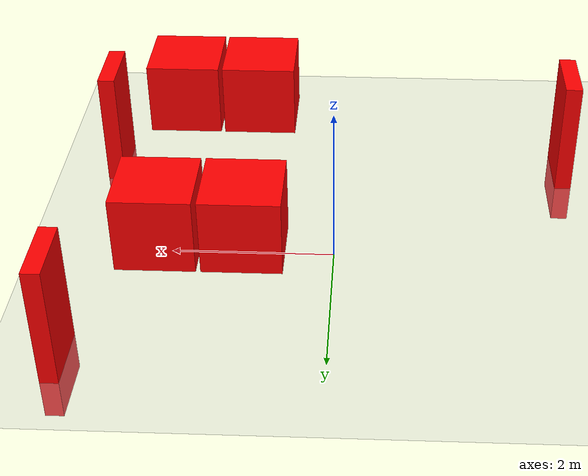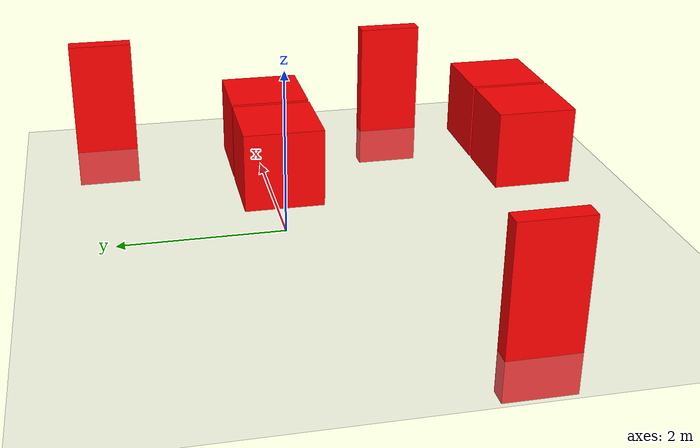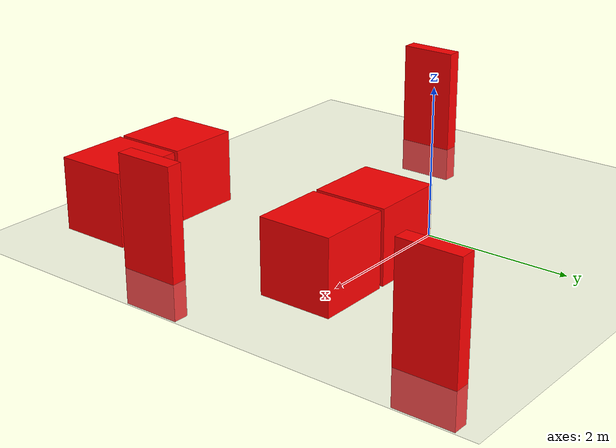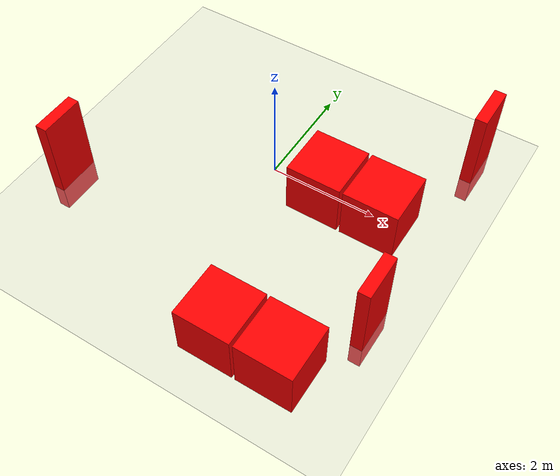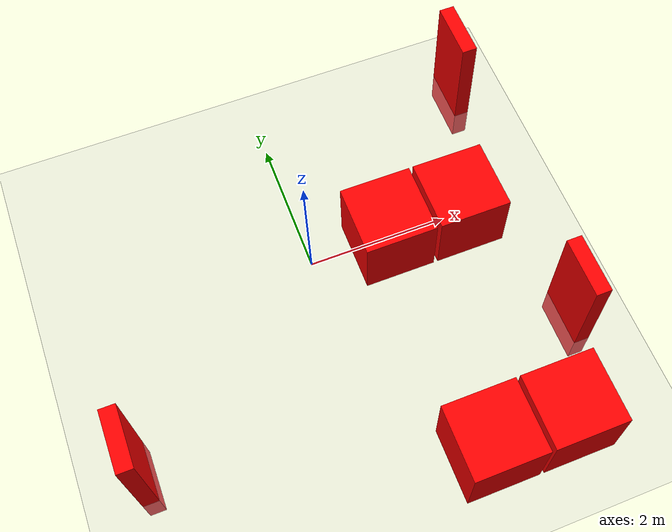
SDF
<sdf version="1.4">
  <world name="shape">

    <scene>
      <ambient>0.4 0.4 0.4 1</ambient>
      <background>0.7 0.7 0.7 1</background>
      <shadows>true</shadows>
    </scene>

    <!-- A global light source -->
    <include>
      <uri>model://sun</uri>
    </include>

    <!-- A ground plane -->
    <include>
      <uri>model://ground_plane</uri>
    </include>

    <model name="box1">
      <pose>3 -2 0.5 0 0 0</pose>
      <link name="box1_link">
        <inertial>
          <inertia>
            <ixx>0.16666</ixx>
            <ixy>0</ixy>
            <ixz>0</ixz>
            <iyy>0.16666</iyy>
            <iyz>0</iyz>
            <izz>0.16666</izz>
          </inertia>
          <mass>1.0</mass>
        </inertial>
        <collision name="box1_collision">
          <geometry>
            <box>
              <size>0.213084 0.814315 2</size>
            </box>
          </geometry>
        </collision>

        <visual name="box1_visual">
          <geometry>
            <box>
              <size>0.213084 0.814315 2</size>
            </box>
          </geometry>
          <material>
            <ambient>1 0 0 1</ambient>
            <diffuse>1 0 0 1</diffuse>
            <specular>1 0 0 1</specular>
          </material>
        </visual>
      </link>
    </model>

    <model name="box2">
        <pose>3 2 0.5 0 0 0</pose>
        <link name="box2_link">
          <inertial>
            <inertia>
              <ixx>0.16666</ixx>
              <ixy>0</ixy>
              <ixz>0</ixz>
              <iyy>0.16666</iyy>
              <iyz>0</iyz>
              <izz>0.16666</izz>
            </inertia>
            <mass>1.0</mass>
          </inertial>
          <collision name="box2_collision">
            <geometry>
              <box>
                <size>0.213084 0.814315 2</size>
              </box>
            </geometry>
          </collision>

          <visual name="box2_visual">
            <geometry>
              <box>
                <size>0.213084 0.814315 2</size>
              </box>
            </geometry>
            <material>
              <ambient>1 0 0 1</ambient>
              <diffuse>1 0 0 1</diffuse>
              <specular>1 0 0 1</specular>
            </material>
          </visual>
        </link>
    </model>

    <model name="box3">
        <pose>-3 -2 0.5 0 0 0</pose>
        <link name="box3_link">
          <inertial>
            <inertia>
              <ixx>0.16666</ixx>
              <ixy>0</ixy>
              <ixz>0</ixz>
              <iyy>0.16666</iyy>
              <iyz>0</iyz>
              <izz>0.16666</izz>
            </inertia>
            <mass>1.0</mass>
          </inertial>
          <collision name="box3_collision">
            <geometry>
              <box>
                <size>0.213084 0.814315 2</size>
              </box>
            </geometry>
          </collision>

          <visual name="box3_visual">
            <geometry>
              <box>
                <size>0.213084 0.814315 2</size>
              </box>
            </geometry>
            <material>
              <ambient>1 0 0 1</ambient>
              <diffuse>1 0 0 1</diffuse>
              <specular>1 0 0 1</specular>
            </material>
          </visual>
        </link>
    </model>

    <model name="boxwall11">
        <pose>1.105320 -0.093958 0.5 0 0 0</pose>
        <link name="box_link">
          <inertial>
            <inertia>
              <ixx>0.16666</ixx>
              <ixy>0</ixy>
              <ixz>0</ixz>
              <iyy>0.16666</iyy>
              <iyz>0</iyz>
              <izz>0.16666</izz>
            </inertia>
            <mass>1.0</mass>
          </inertial>
          <collision name="box_collision">
            <geometry>
              <box>
                <size>1 1 1</size>
              </box>
            </geometry>
          </collision>

          <visual name="box_visual">
            <geometry>
              <box>
                <size>1 1 1</size>
              </box>
            </geometry>
            <material>
              <ambient>1 0 0 1</ambient>
              <diffuse>1 0 0 1</diffuse>
              <specular>1 0 0 1</specular>
            </material>
          </visual>
        </link>
    </model>

    <model name="boxwall12">
        <pose>2.164700 -0.093958 0.5 0 0 0</pose>
        <link name="box_link">
          <inertial>
            <inertia>
              <ixx>0.16666</ixx>
              <ixy>0</ixy>
              <ixz>0</ixz>
              <iyy>0.16666</iyy>
              <iyz>0</iyz>
              <izz>0.16666</izz>
            </inertia>
            <mass>1.0</mass>
          </inertial>
          <collision name="box_collision">
            <geometry>
              <box>
                <size>1 1 1</size>
              </box>
            </geometry>
          </collision>

          <visual name="box_visual">
            <geometry>
              <box>
                <size>1 1 1</size>
              </box>
            </geometry>
            <material>
              <ambient>1 0 0 1</ambient>
              <diffuse>1 0 0 1</diffuse>
              <specular>1 0 0 1</specular>
            </material>
          </visual>
        </link>
    </model>

    <model name="boxwall21">
        <pose>1.170070 -3.350280 0.5 0 0 0</pose>
        <link name="box_link">
          <inertial>
            <inertia>
              <ixx>0.16666</ixx>
              <ixy>0</ixy>
              <ixz>0</ixz>
              <iyy>0.16666</iyy>
              <iyz>0</iyz>
              <izz>0.16666</izz>
            </inertia>
            <mass>1.0</mass>
          </inertial>
          <collision name="box_collision">
            <geometry>
              <box>
                <size>1 1 1</size>
              </box>
            </geometry>
          </collision>

          <visual name="box_visual">
            <geometry>
              <box>
                <size>1 1 1</size>
              </box>
            </geometry>
            <material>
              <ambient>1 0 0 1</ambient>
              <diffuse>1 0 0 1</diffuse>
              <specular>1 0 0 1</specular>
            </material>
          </visual>
        </link>
    </model>

    <model name="boxwall22">
        <pose>2.226880 -3.350280 0.5 0 0 0</pose>
        <link name="box_link">
          <inertial>
            <inertia>
              <ixx>0.16666</ixx>
              <ixy>0</ixy>
              <ixz>0</ixz>
              <iyy>0.16666</iyy>
              <iyz>0</iyz>
              <izz>0.16666</izz>
            </inertia>
            <mass>1.0</mass>
          </inertial>
          <collision name="box_collision">
            <geometry>
              <box>
                <size>1 1 1</size>
              </box>
            </geometry>
          </collision>

          <visual name="box_visual">
            <geometry>
              <box>
                <size>1 1 1</size>
              </box>
            </geometry>
            <material>
              <ambient>1 0 0 1</ambient>
              <diffuse>1 0 0 1</diffuse>
              <specular>1 0 0 1</specular>
            </material>
          </visual>
        </link>
    </model>

    <physics type="ode">
      <real_time_update_rate>1000.0</real_time_update_rate>
      <max_step_size>0.001</max_step_size>
      <real_time_factor>1</real_time_factor>
      <ode>
        <solver>
          <type>quick</type>
          <iters>150</iters>
          <precon_iters>0</precon_iters>
          <sor>1.400000</sor>
          <use_dynamic_moi_rescaling>1</use_dynamic_moi_rescaling>
        </solver>
        <constraints>
          <cfm>0.00001</cfm>
          <erp>0.2</erp>
          <contact_max_correcting_vel>2000.000000</contact_max_correcting_vel>
          <contact_surface_layer>0.01000</contact_surface_layer>
        </constraints>
      </ode>
    </physics>
  </world>

</sdf>
